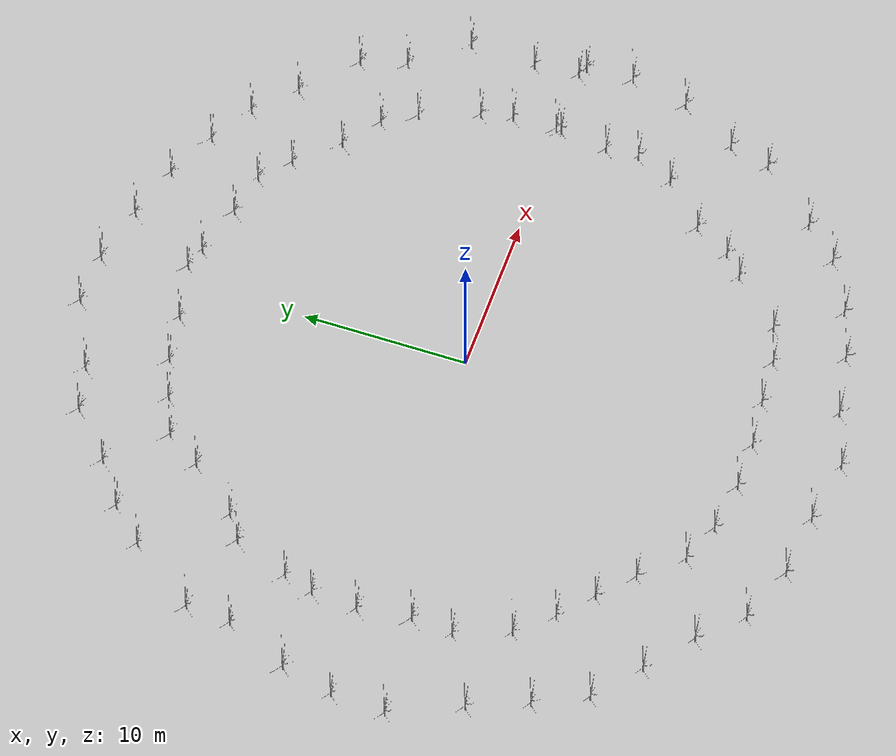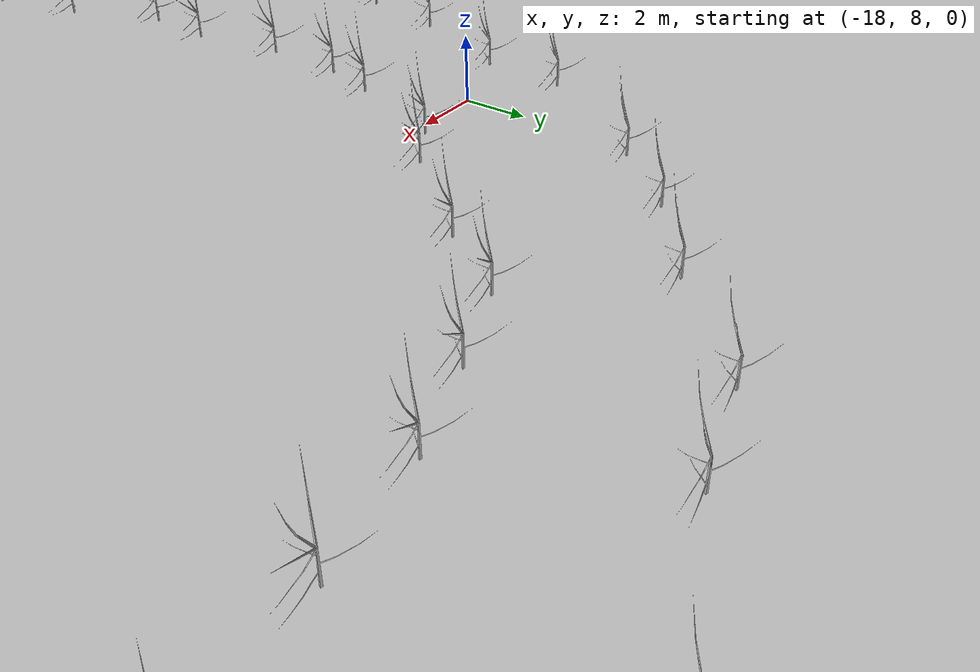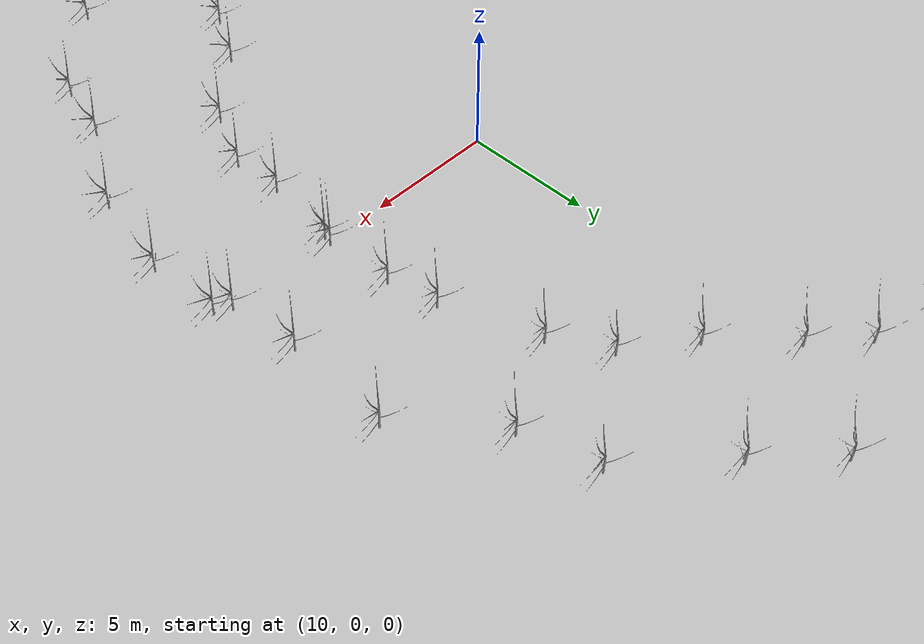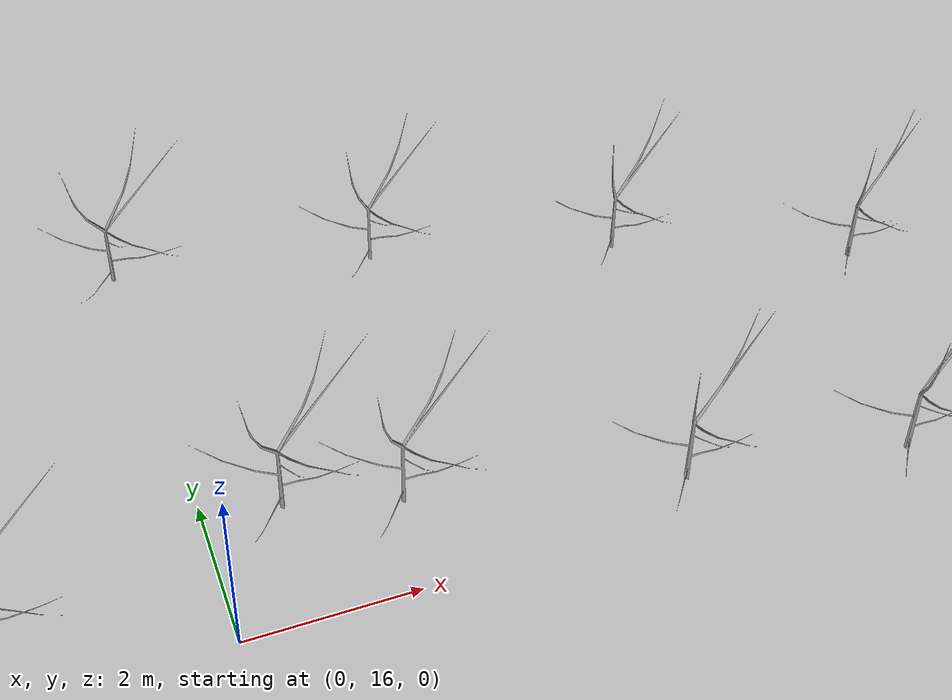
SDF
<?xml version="1.0" ?>
<sdf version="1.5">
  <world name="default">
    <!-- A global light source -->
    <include>
      <uri>model://sun</uri>
    </include>
    <!-- A ground plane -->
    <include>
      <uri>model://ground_plane</uri>
    </include>
    <include>
      <uri>model://road_generation_gazebo/models/bush</uri>
      <pose>17.46881 0.11009 0.0 0.0 0.0 0.0</pose>
    </include>
    <include>
      <uri>model://road_generation_gazebo/models/bush</uri>
      <pose>17.3681 2.83836 0.0 0.0 0.0 0.0</pose>
    </include>
    <include>
      <uri>model://road_generation_gazebo/models/bush</uri>
      <pose>16.97305 4.78376 0.0 0.0 0.0 0.0</pose>
    </include>
    <include>
      <uri>model://road_generation_gazebo/models/bush</uri>
      <pose>15.67032 8.35831 0.0 0.0 0.0 0.0</pose>
    </include>
    <include>
      <uri>model://road_generation_gazebo/models/bush</uri>
      <pose>14.46441 10.3433 0.0 0.0 0.0 0.0</pose>
    </include>
    <include>
      <uri>model://road_generation_gazebo/models/bush</uri>
      <pose>12.19502 12.02495 0.0 0.0 0.0 0.0</pose>
    </include>
    <include>
      <uri>model://road_generation_gazebo/models/bush</uri>
      <pose>9.94416 14.42413 0.0 0.0 0.0 0.0</pose>
    </include>
    <include>
      <uri>model://road_generation_gazebo/models/bush</uri>
      <pose>8.20204 15.98424 0.0 0.0 0.0 0.0</pose>
    </include>
    <include>
      <uri>model://road_generation_gazebo/models/bush</uri>
      <pose>5.45982 16.47137 0.0 0.0 0.0 0.0</pose>
    </include>
    <include>
      <uri>model://road_generation_gazebo/models/bush</uri>
      <pose>2.23645 17.28703 0.0 0.0 0.0 0.0</pose>
    </include>
    <include>
      <uri>model://road_generation_gazebo/models/bush</uri>
      <pose>0.90865 17.68265 0.0 0.0 0.0 0.0</pose>
    </include>
    <include>
      <uri>model://road_generation_gazebo/models/bush</uri>
      <pose>-2.59718 16.86222 0.0 0.0 0.0 0.0</pose>
    </include>
    <include>
      <uri>model://road_generation_gazebo/models/bush</uri>
      <pose>-5.55476 16.36682 0.0 0.0 0.0 0.0</pose>
    </include>
    <include>
      <uri>model://road_generation_gazebo/models/bush</uri>
      <pose>-7.95661 15.47885 0.0 0.0 0.0 0.0</pose>
    </include>
    <include>
      <uri>model://road_generation_gazebo/models/bush</uri>
      <pose>-10.26878 14.48049 0.0 0.0 0.0 0.0</pose>
    </include>
    <include>
      <uri>model://road_generation_gazebo/models/bush</uri>
      <pose>-11.66753 12.33734 0.0 0.0 0.0 0.0</pose>
    </include>
    <include>
      <uri>model://road_generation_gazebo/models/bush</uri>
      <pose>-14.14846 9.32771 0.0 0.0 0.0 0.0</pose>
    </include>
    <include>
      <uri>model://road_generation_gazebo/models/bush</uri>
      <pose>-15.57008 8.34376 0.0 0.0 0.0 0.0</pose>
    </include>
    <include>
      <uri>model://road_generation_gazebo/models/bush</uri>
      <pose>-16.80046 5.00613 0.0 0.0 0.0 0.0</pose>
    </include>
    <include>
      <uri>model://road_generation_gazebo/models/bush</uri>
      <pose>-17.32864 3.21807 0.0 0.0 0.0 0.0</pose>
    </include>
    <include>
      <uri>model://road_generation_gazebo/models/bush</uri>
      <pose>-17.51519 0.47468 0.0 0.0 0.0 0.0</pose>
    </include>
    <include>
      <uri>model://road_generation_gazebo/models/bush</uri>
      <pose>-17.07124 -2.66281 0.0 0.0 0.0 0.0</pose>
    </include>
    <include>
      <uri>model://road_generation_gazebo/models/bush</uri>
      <pose>-17.27777 -5.11393 0.0 0.0 0.0 0.0</pose>
    </include>
    <include>
      <uri>model://road_generation_gazebo/models/bush</uri>
      <pose>-16.10708 -8.29373 0.0 0.0 0.0 0.0</pose>
    </include>
    <include>
      <uri>model://road_generation_gazebo/models/bush</uri>
      <pose>-14.3648 -10.28144 0.0 0.0 0.0 0.0</pose>
    </include>
    <include>
      <uri>model://road_generation_gazebo/models/bush</uri>
      <pose>-12.44223 -11.98144 0.0 0.0 0.0 0.0</pose>
    </include>
    <include>
      <uri>model://road_generation_gazebo/models/bush</uri>
      <pose>-10.50065 -13.785 0.0 0.0 0.0 0.0</pose>
    </include>
    <include>
      <uri>model://road_generation_gazebo/models/bush</uri>
      <pose>-8.50228 -16.10059 0.0 0.0 0.0 0.0</pose>
    </include>
    <include>
      <uri>model://road_generation_gazebo/models/bush</uri>
      <pose>-6.07536 -17.0422 0.0 0.0 0.0 0.0</pose>
    </include>
    <include>
      <uri>model://road_generation_gazebo/models/bush</uri>
      <pose>-3.03666 -17.50362 0.0 0.0 0.0 0.0</pose>
    </include>
    <include>
      <uri>model://road_generation_gazebo/models/bush</uri>
      <pose>-0.12246 -17.53325 0.0 0.0 0.0 0.0</pose>
    </include>
    <include>
      <uri>model://road_generation_gazebo/models/bush</uri>
      <pose>2.81171 -17.23363 0.0 0.0 0.0 0.0</pose>
    </include>
    <include>
      <uri>model://road_generation_gazebo/models/bush</uri>
      <pose>5.65199 -17.07432 0.0 0.0 0.0 0.0</pose>
    </include>
    <include>
      <uri>model://road_generation_gazebo/models/bush</uri>
      <pose>7.90423 -16.4319 0.0 0.0 0.0 0.0</pose>
    </include>
    <include>
      <uri>model://road_generation_gazebo/models/bush</uri>
      <pose>10.72521 -13.49935 0.0 0.0 0.0 0.0</pose>
    </include>
    <include>
      <uri>model://road_generation_gazebo/models/bush</uri>
      <pose>12.02167 -12.34264 0.0 0.0 0.0 0.0</pose>
    </include>
    <include>
      <uri>model://road_generation_gazebo/models/bush</uri>
      <pose>13.28742 -10.12818 0.0 0.0 0.0 0.0</pose>
    </include>
    <include>
      <uri>model://road_generation_gazebo/models/bush</uri>
      <pose>15.91491 -7.61611 0.0 0.0 0.0 0.0</pose>
    </include>
    <include>
      <uri>model://road_generation_gazebo/models/bush</uri>
      <pose>17.07023 -5.23798 0.0 0.0 0.0 0.0</pose>
    </include>
    <include>
      <uri>model://road_generation_gazebo/models/bush</uri>
      <pose>16.98394 -3.21573 0.0 0.0 0.0 0.0</pose>
    </include>
    <include>
      <uri>model://road_generation_gazebo/models/bush</uri>
      <pose>17.39515 -0.23347 0.0 0.0 0.0 0.0</pose>
    </include>
    <include>
      <uri>model://road_generation_gazebo/models/bush</uri>
      <pose>21.76037 0.04588 0.0 0.0 0.0 0.0</pose>
    </include>
    <include>
      <uri>model://road_generation_gazebo/models/bush</uri>
      <pose>21.52107 2.83293 0.0 0.0 0.0 0.0</pose>
    </include>
    <include>
      <uri>model://road_generation_gazebo/models/bush</uri>
      <pose>21.7891 7.03087 0.0 0.0 0.0 0.0</pose>
    </include>
    <include>
      <uri>model://road_generation_gazebo/models/bush</uri>
      <pose>19.10926 10.24683 0.0 0.0 0.0 0.0</pose>
    </include>
    <include>
      <uri>model://road_generation_gazebo/models/bush</uri>
      <pose>18.30949 13.05681 0.0 0.0 0.0 0.0</pose>
    </include>
    <include>
      <uri>model://road_generation_gazebo/models/bush</uri>
      <pose>15.1016 15.90313 0.0 0.0 0.0 0.0</pose>
    </include>
    <include>
      <uri>model://road_generation_gazebo/models/bush</uri>
      <pose>12.74864 18.10888 0.0 0.0 0.0 0.0</pose>
    </include>
    <include>
      <uri>model://road_generation_gazebo/models/bush</uri>
      <pose>9.99919 19.65768 0.0 0.0 0.0 0.0</pose>
    </include>
    <include>
      <uri>model://road_generation_gazebo/models/bush</uri>
      <pose>6.86121 21.06909 0.0 0.0 0.0 0.0</pose>
    </include>
    <include>
      <uri>model://road_generation_gazebo/models/bush</uri>
      <pose>3.42778 22.04236 0.0 0.0 0.0 0.0</pose>
    </include>
    <include>
      <uri>model://road_generation_gazebo/models/bush</uri>
      <pose>-0.16972 22.80551 0.0 0.0 0.0 0.0</pose>
    </include>
    <include>
      <uri>model://road_generation_gazebo/models/bush</uri>
      <pose>-3.39967 22.84045 0.0 0.0 0.0 0.0</pose>
    </include>
    <include>
      <uri>model://road_generation_gazebo/models/bush</uri>
      <pose>-7.63101 20.81268 0.0 0.0 0.0 0.0</pose>
    </include>
    <include>
      <uri>model://road_generation_gazebo/models/bush</uri>
      <pose>-10.36485 20.11158 0.0 0.0 0.0 0.0</pose>
    </include>
    <include>
      <uri>model://road_generation_gazebo/models/bush</uri>
      <pose>-13.13014 17.52981 0.0 0.0 0.0 0.0</pose>
    </include>
    <include>
      <uri>model://road_generation_gazebo/models/bush</uri>
      <pose>-15.67728 15.68685 0.0 0.0 0.0 0.0</pose>
    </include>
    <include>
      <uri>model://road_generation_gazebo/models/bush</uri>
      <pose>-17.58395 13.63168 0.0 0.0 0.0 0.0</pose>
    </include>
    <include>
      <uri>model://road_generation_gazebo/models/bush</uri>
      <pose>-20.4371 9.57427 0.0 0.0 0.0 0.0</pose>
    </include>
    <include>
      <uri>model://road_generation_gazebo/models/bush</uri>
      <pose>-20.62121 6.8901 0.0 0.0 0.0 0.0</pose>
    </include>
    <include>
      <uri>model://road_generation_gazebo/models/bush</uri>
      <pose>-22.24123 3.13511 0.0 0.0 0.0 0.0</pose>
    </include>
    <include>
      <uri>model://road_generation_gazebo/models/bush</uri>
      <pose>-22.97038 0.02942 0.0 0.0 0.0 0.0</pose>
    </include>
    <include>
      <uri>model://road_generation_gazebo/models/bush</uri>
      <pose>-23.1399 -3.18723 0.0 0.0 0.0 0.0</pose>
    </include>
    <include>
      <uri>model://road_generation_gazebo/models/bush</uri>
      <pose>-21.33499 -7.26209 0.0 0.0 0.0 0.0</pose>
    </include>
    <include>
      <uri>model://road_generation_gazebo/models/bush</uri>
      <pose>-19.9711 -10.63882 0.0 0.0 0.0 0.0</pose>
    </include>
    <include>
      <uri>model://road_generation_gazebo/models/bush</uri>
      <pose>-18.53335 -13.62812 0.0 0.0 0.0 0.0</pose>
    </include>
    <include>
      <uri>model://road_generation_gazebo/models/bush</uri>
      <pose>-15.91665 -15.8568 0.0 0.0 0.0 0.0</pose>
    </include>
    <include>
      <uri>model://road_generation_gazebo/models/bush</uri>
      <pose>-13.20309 -18.05114 0.0 0.0 0.0 0.0</pose>
    </include>
    <include>
      <uri>model://road_generation_gazebo/models/bush</uri>
      <pose>-10.99679 -20.39781 0.0 0.0 0.0 0.0</pose>
    </include>
    <include>
      <uri>model://road_generation_gazebo/models/bush</uri>
      <pose>-7.55911 -21.70027 0.0 0.0 0.0 0.0</pose>
    </include>
    <include>
      <uri>model://road_generation_gazebo/models/bush</uri>
      <pose>-3.72512 -22.09722 0.0 0.0 0.0 0.0</pose>
    </include>
    <include>
      <uri>model://road_generation_gazebo/models/bush</uri>
      <pose>0.16015 -22.74809 0.0 0.0 0.0 0.0</pose>
    </include>
    <include>
      <uri>model://road_generation_gazebo/models/bush</uri>
      <pose>3.53187 -21.68495 0.0 0.0 0.0 0.0</pose>
    </include>
    <include>
      <uri>model://road_generation_gazebo/models/bush</uri>
      <pose>7.30185 -21.01033 0.0 0.0 0.0 0.0</pose>
    </include>
    <include>
      <uri>model://road_generation_gazebo/models/bush</uri>
      <pose>10.29178 -20.07957 0.0 0.0 0.0 0.0</pose>
    </include>
    <include>
      <uri>model://road_generation_gazebo/models/bush</uri>
      <pose>13.57809 -18.44183 0.0 0.0 0.0 0.0</pose>
    </include>
    <include>
      <uri>model://road_generation_gazebo/models/bush</uri>
      <pose>15.55079 -16.39141 0.0 0.0 0.0 0.0</pose>
    </include>
    <include>
      <uri>model://road_generation_gazebo/models/bush</uri>
      <pose>18.90542 -12.86835 0.0 0.0 0.0 0.0</pose>
    </include>
    <include>
      <uri>model://road_generation_gazebo/models/bush</uri>
      <pose>19.60744 -10.32656 0.0 0.0 0.0 0.0</pose>
    </include>
    <include>
      <uri>model://road_generation_gazebo/models/bush</uri>
      <pose>21.66648 -6.81747 0.0 0.0 0.0 0.0</pose>
    </include>
    <include>
      <uri>model://road_generation_gazebo/models/bush</uri>
      <pose>22.45539 -3.20859 0.0 0.0 0.0 0.0</pose>
    </include>
    <include>
      <uri>model://road_generation_gazebo/models/bush</uri>
      <pose>22.32983 -0.26247 0.0 0.0 0.0 0.0</pose>
    </include>
  </world>
</sdf>

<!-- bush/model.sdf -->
<sdf version='1.6'>
  <model name='bush'>
    <link name='body'>
      <pose frame=''>0 0 0 0 -0 0</pose>
      <self_collide>0</self_collide>
      <kinematic>0</kinematic>
      <gravity>1</gravity>
      <inertial>
        <mass>1</mass>
        <pose frame=''>0 0 0 0 -0 0</pose>
        <inertia>
          <ixx>1</ixx>
          <ixy>0</ixy>
          <ixz>0</ixz>
          <iyy>1</iyy>
          <iyz>0</iyz>
          <izz>1</izz>
        </inertia>
      </inertial>
      <visual name='visual'>
        <geometry>
          <mesh>
            <uri>model://road_generation_gazebo/collada/bush.dae</uri>
          </mesh>
        </geometry>
        <pose frame=''>0 0 0 0 -0 0</pose>
        <cast_shadows>1</cast_shadows>
        <transparency>0</transparency>
        <material>
          <shader type='vertex'>
            <normal_map>__default__</normal_map>
          </shader>
        </material>
      </visual>
      <collision name='collision'>
        <laser_retro>0</laser_retro>
        <max_contacts>10</max_contacts>
        <pose frame=''>0 0 0 0 -0 0</pose>
        <geometry>
          <mesh>
            <uri>model://road_generation_gazebo/collada/bush_bole.dae</uri>
          </mesh>
        </geometry>
        <surface>
          <friction>
            <ode>
              <mu>1</mu>
              <mu2>1</mu2>
              <fdir1>0 0 0</fdir1>
              <slip1>0</slip1>
              <slip2>0</slip2>
            </ode>
            <torsional>
              <coefficient>1</coefficient>
              <patch_radius>0</patch_radius>
              <surface_radius>0</surface_radius>
              <use_patch_radius>1</use_patch_radius>
              <ode>
                <slip>0</slip>
              </ode>
            </torsional>
          </friction>
          <bounce>
            <restitution_coefficient>0</restitution_coefficient>
            <threshold>1e+06</threshold>
          </bounce>
          <contact>
            <collide_without_contact>0</collide_without_contact>
            <collide_without_contact_bitmask>1</collide_without_contact_bitmask>
            <collide_bitmask>1</collide_bitmask>
            <ode>
              <soft_cfm>0</soft_cfm>
              <soft_erp>0.2</soft_erp>
              <kp>1e+13</kp>
              <kd>1</kd>
              <max_vel>0.01</max_vel>
              <min_depth>0</min_depth>
            </ode>
            <bullet>
              <split_impulse>1</split_impulse>
              <split_impulse_penetration_threshold>-0.01</split_impulse_penetration_threshold>
              <soft_cfm>0</soft_cfm>
              <soft_erp>0.2</soft_erp>
              <kp>1e+13</kp>
              <kd>1</kd>
            </bullet>
          </contact>
        </surface>
      </collision>
    </link>
    <static>1</static>
    <allow_auto_disable>1</allow_auto_disable>
  </model>
</sdf>
